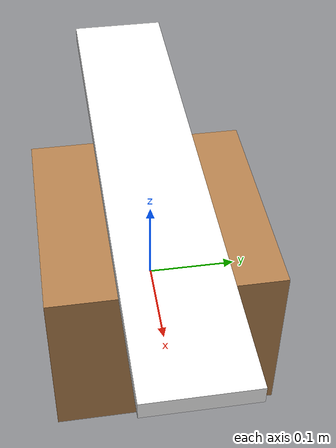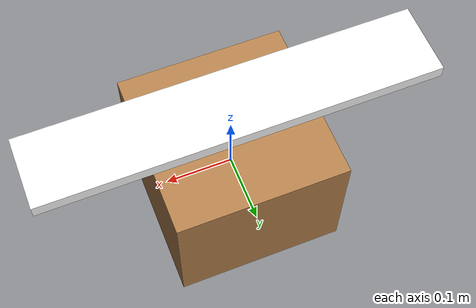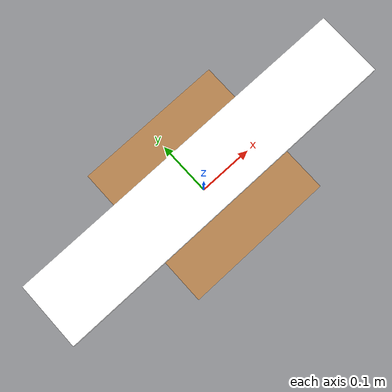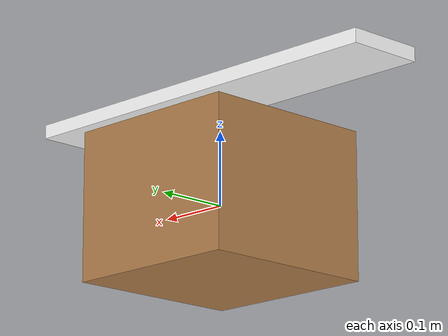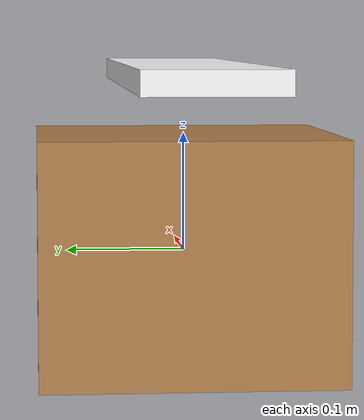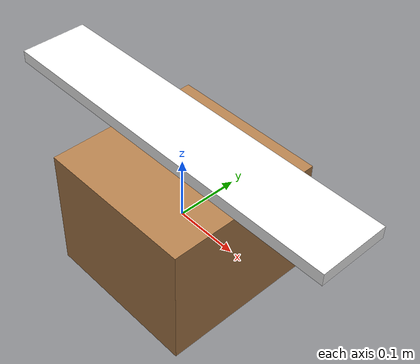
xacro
<?xml version="1.0"?>
<robot name="motor_test" xmlns:xacro="http://www.ros.org/wiki/xacro">

  <!-- Base box -->
  <link name="base_link">
    <visual>
      <geometry>
        <box size="0.25 0.25 0.2"/> <!-- Adjust dimensions to match your cube -->
      </geometry>
      <origin xyz="0 0 0" rpy="0 0 0"/>
      <material name="wood">
        <color rgba="0.7 0.5 0.3 1.0"/>
      </material>
    </visual>
  </link>

  <!-- Rotating bar -->
  <link name="bar_link">
    <visual>
      <geometry>
        <box size="0.57912 0.10795 0.01905"/> <!-- The long bar -->
      </geometry>
      <origin xyz="0 0 0" rpy="0 0 0"/>
      <material name="white">
        <color rgba="1 1 1 1"/>
      </material>
    </visual>
  </link>

  <!-- Revolute joint connecting base to bar -->
  <joint name="base_to_bar" type="revolute">
    <parent link="base_link"/>
    <child link="bar_link"/>
    <origin xyz="0 0 0.15" rpy="0 0 0"/> <!-- Motor shaft position -->
    <axis xyz="0 0 1"/> <!-- Rotation around Z-axis -->
    <limit lower="-3.14" upper="3.14" effort="10" velocity="1.0"/>
  </joint>

</robot>
